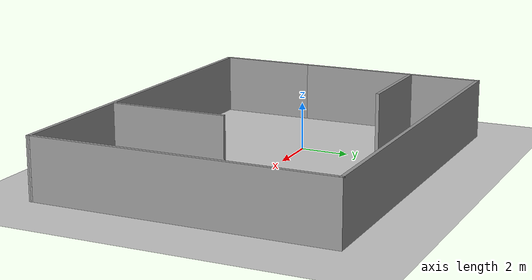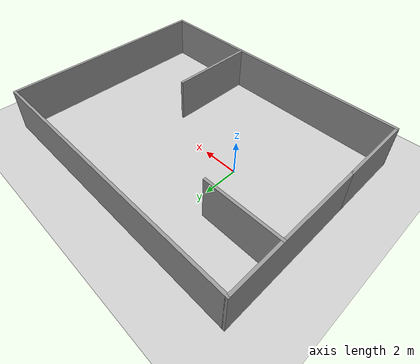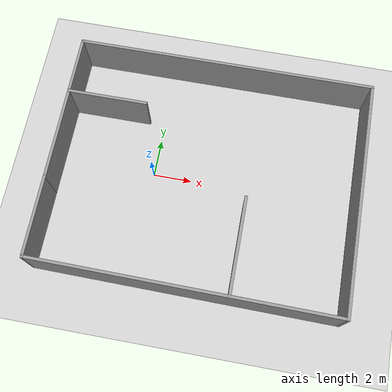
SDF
<sdf version="1.7">
 <world name="default">
  <light name="sun" type="directional">
   <pose>0 0 10 0 -0 0</pose>
   <diffuse>0.8 0.8 0.8 1</diffuse>
   <specular>0.2 0.2 0.2 1</specular>
   <attenuation>
    <range>1000</range>
    <constant>0.9</constant>
    <linear>0.01</linear>
    <quadratic>0.001</quadratic>
   </attenuation>
   <direction>-0.5 0.1 -0.9</direction>
   <spot><inner_angle>0</inner_angle><outer_angle>0</outer_angle><falloff>0</falloff></spot>
  </light>
  <model name="ground_plane">
   <static>1</static>
   <link name="link">
    <collision name="collision">
     <geometry><plane><normal>0 0 1</normal><size>100 100</size></plane></geometry>
     <surface>
      <contact><collide_bitmask>65535</collide_bitmask></contact>
      <friction><ode><mu>100</mu><mu2>50</mu2></ode></friction>
     </surface>
    </collision>
    <visual name="visual">
     <cast_shadows>0</cast_shadows>
     <geometry><plane><normal>0 0 1</normal><size>100 100</size></plane></geometry>
     <material>
      <script><uri>file://media/materials/scripts/gazebo.material</uri><name>Gazebo/Grey</name></script>
     </material>
    </visual>
   </link>
  </model>
  <gravity>0 0 -9.8</gravity>
  <magnetic_field>6e-06 2.3e-05 -4.2e-05</magnetic_field>
  <atmosphere type="adiabatic"/>
  <physics type="ode">
   <max_step_size>0.001</max_step_size>
   <real_time_factor>1</real_time_factor>
   <real_time_update_rate>1000</real_time_update_rate>
  </physics>
  <scene><ambient>0.4 0.4 0.4 1</ambient><background>0.7 0.7 0.7 1</background><shadows>1</shadows></scene>
  <audio><device>default</device></audio>
  <spherical_coordinates>
   <surface_model>EARTH_WGS84</surface_model>
   <latitude_deg>0</latitude_deg>
   <longitude_deg>0</longitude_deg>
   <elevation>0</elevation>
   <heading_deg>0</heading_deg>
  </spherical_coordinates>
  <model name="proov.world">
   <pose>2.80799 -0.041975 0 0 -0 0</pose>
   <link name="Wall_1">
    <collision name="Wall_1_Collision">
     <geometry><box><size>8 0.15 2.5</size></box></geometry>
     <pose>0 0 1.25 0 -0 0</pose>
    </collision>
    <visual name="Wall_1_Visual">
     <pose>0 0 1.25 0 -0 0</pose>
     <geometry><box><size>8 0.15 2.5</size></box></geometry>
     <material>
      <script><uri>file://media/materials/scripts/gazebo.material</uri><name>Gazebo/Grey</name></script>
      <ambient>1 1 1 1</ambient>
     </material>
     <meta><layer>0</layer></meta>
    </visual>
    <pose>-7.8 2.12536 0 0 -0 1.5708</pose>
   </link>
   <link name="Wall_2">
    <collision name="Wall_2_Collision">
     <geometry><box><size>15.75 0.15 2.5</size></box></geometry>
     <pose>0 0 1.25 0 -0 0</pose>
    </collision>
    <visual name="Wall_2_Visual">
     <pose>0 0 1.25 0 -0 0</pose>
     <geometry><box><size>15.75 0.15 2.5</size></box></geometry>
     <material>
      <script><uri>file://media/materials/scripts/gazebo.material</uri><name>Gazebo/Grey</name></script>
      <ambient>1 1 1 1</ambient>
     </material>
     <meta><layer>0</layer></meta>
    </visual>
    <pose>-0 6.05036 0 0 -0 0</pose>
   </link>
   <link name="Wall_3">
    <collision name="Wall_3_Collision">
     <geometry><box><size>12.25 0.15 2.5</size></box></geometry>
     <pose>0 0 1.25 0 -0 0</pose>
    </collision>
    <visual name="Wall_3_Visual">
     <pose>0 0 1.25 0 -0 0</pose>
     <geometry><box><size>12.25 0.15 2.5</size></box></geometry>
     <material>
      <script><uri>file://media/materials/scripts/gazebo.material</uri><name>Gazebo/Grey</name></script>
      <ambient>1 1 1 1</ambient>
     </material>
     <meta><layer>0</layer></meta>
    </visual>
    <pose>7.8 0.000359 0 0 -0 -1.5708</pose>
   </link>
   <link name="Wall_4">
    <collision name="Wall_4_Collision">
     <geometry><box><size>15.7507 0.15 2.5</size></box></geometry>
     <pose>0 0 1.25 0 -0 0</pose>
    </collision>
    <visual name="Wall_4_Visual">
     <pose>0 0 1.25 0 -0 0</pose>
     <geometry><box><size>15.7507 0.15 2.5</size></box></geometry>
     <material>
      <script><uri>file://media/materials/scripts/gazebo.material</uri><name>Gazebo/Grey</name></script>
      <ambient>1 1 1 1</ambient>
     </material>
     <meta><layer>0</layer></meta>
    </visual>
    <pose>-0 -5.97464 0 0 -0 3.13198</pose>
   </link>
   <link name="Wall_5">
    <collision name="Wall_5_Collision">
     <geometry><box><size>4.25 0.15 2.5</size></box></geometry>
     <pose>0 0 1.25 0 -0 0</pose>
    </collision>
    <visual name="Wall_5_Visual">
     <pose>0 0 1.25 0 -0 0</pose>
     <geometry><box><size>4.25 0.15 2.5</size></box></geometry>
     <material>
      <script><uri>file://media/materials/scripts/gazebo.material</uri><name>Gazebo/Grey</name></script>
      <ambient>1 1 1 1</ambient>
     </material>
     <meta><layer>0</layer></meta>
    </visual>
    <pose>-7.8 -3.84964 0 0 -0 1.5708</pose>
   </link>
   <link name="Wall_7">
    <collision name="Wall_7_Collision">
     <geometry><box><size>5 0.15 2.5</size></box></geometry>
     <pose>0 0 1.25 0 -0 0</pose>
    </collision>
    <visual name="Wall_7_Visual">
     <pose>0 0 1.25 0 -0 0</pose>
     <geometry><box><size>5 0.15 2.5</size></box></geometry>
     <material>
      <script><uri>file://media/materials/scripts/gazebo.material</uri><name>Gazebo/Grey</name></script>
      <ambient>1 1 1 1</ambient>
     </material>
     <meta><layer>0</layer></meta>
    </visual>
    <pose>2.23868 -3.51502 0 0 -0 1.5708</pose>
   </link>
   <link name="Wall_9">
    <collision name="Wall_9_Collision">
     <geometry><box><size>4.25 0.15 2.5</size></box></geometry>
     <pose>0 0 1.25 0 -0 0</pose>
    </collision>
    <visual name="Wall_9_Visual">
     <pose>0 0 1.25 0 -0 0</pose>
     <geometry><box><size>4.25 0.15 2.5</size></box></geometry>
     <material>
      <script><uri>file://media/materials/scripts/gazebo.material</uri><name>Gazebo/Grey</name></script>
      <ambient>1 1 1 1</ambient>
     </material>
     <meta><layer>0</layer></meta>
    </visual>
    <pose>-5.75 3.03466 0 0 -0 0</pose>
   </link>
   <static>1</static>
  </model>
 </world>
</sdf>
